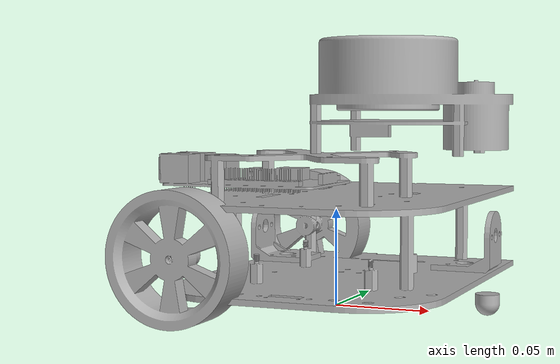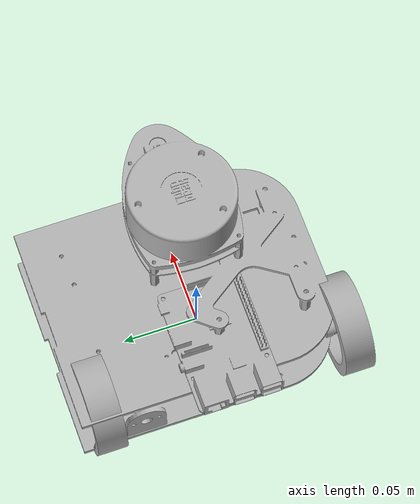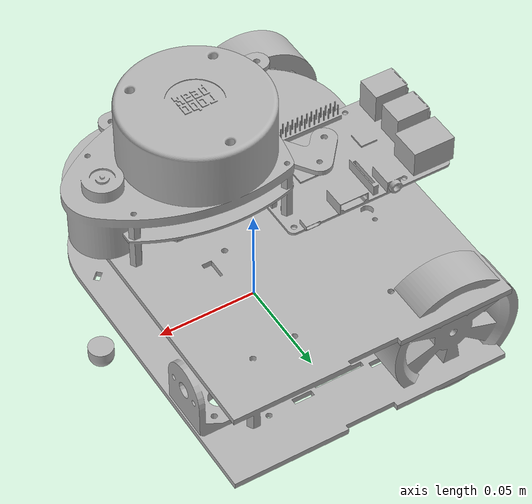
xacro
<?xml version="1.0" ?>
<robot name="robot" xmlns:xacro="http://www.ros.org/wiki/xacro">

<xacro:include filename="$(find robot_description)/urdf/materials.xacro" />
<xacro:include filename="$(find robot_description)/urdf/robot.trans" />

<xacro:include filename="$(find robot_description)/urdf/robot_materials.gazebo" />
<xacro:include filename="$(find robot_description)/urdf/robot_physics.gazebo" />
<xacro:include filename="$(find robot_description)/urdf/robot_plugins.gazebo" />

<link name="base_link">
  <inertial>
    <origin xyz="-0.006884713768929933 9.213905722342818e-06 0.034703030496186026" rpy="0 0 0"/>
    <mass value="0.23515369434832864"/>
    <inertia ixx="0.000507" iyy="0.000662" izz="0.000961" ixy="0.0" iyz="-0.0" ixz="-2.5e-05"/>
  </inertial>
  <visual>
    <origin xyz="0 0 0" rpy="0 0 0"/>
    <geometry>
      <mesh filename="package://robot_description/meshes/base_link.dae" scale="0.001 0.001 0.001"/>
    </geometry>
    <material name="silver"/>
  </visual>
  <collision>
    <origin xyz="0 0 0" rpy="0 0 0"/>
    <geometry>
      <mesh filename="package://robot_description/meshes/base_link.dae" scale="0.001 0.001 0.001"/>
    </geometry>
  </collision>
</link>

<link name="left_wheel_1">
  <inertial>
    <origin xyz="-5.4817837841919514e-06 0.01327997987885901 1.2011591450644676e-08" rpy="0 0 0"/>
    <mass value="0.037788267086655676"/>
    <inertia ixx="1.4e-05" iyy="2.6e-05" izz="1.4e-05" ixy="-0.0" iyz="-0.0" ixz="0.0"/>
  </inertial>
  <visual>
    <origin xyz="0.0475 -0.07049 -0.0325" rpy="0 0 0"/>
    <geometry>
      <mesh filename="package://robot_description/meshes/left_wheel.dae" scale="0.001 0.001 0.001"/>
    </geometry>
    <material name="silver"/>
  </visual>
  <collision>
    <origin xyz="0.0475 -0.07049 -0.0325" rpy="0 0 0"/>
    <geometry>
      <mesh filename="package://robot_description/meshes/left_wheel.dae" scale="0.001 0.001 0.001"/>
    </geometry>
  </collision>
</link>

<link name="right_wheel_1">
  <inertial>
    <origin xyz="4.842721226090696e-06 -0.013279403971838535 1.2011589355098717e-08" rpy="0 0 0"/>
    <mass value="0.03778826708665569"/>
    <inertia ixx="1.4e-05" iyy="2.6e-05" izz="1.4e-05" ixy="-0.0" iyz="0.0" ixz="-0.0"/>
  </inertial>
  <visual>
    <origin xyz="0.0475 0.07051 -0.0325" rpy="0 0 0"/>
    <geometry>
      <mesh filename="package://robot_description/meshes/right_wheel.dae" scale="0.001 0.001 0.001"/>
    </geometry>
    <material name="silver"/>
  </visual>
  <collision>
    <origin xyz="0.0475 0.07051 -0.0325" rpy="0 0 0"/>
    <geometry>
      <mesh filename="package://robot_description/meshes/right_wheel.dae" scale="0.001 0.001 0.001"/>
    </geometry>
  </collision>
</link>

<link name="rplidar_1">
  <inertial>
    <origin xyz="-0.028 0.0 -0.12294" rpy="0 0 0"/>
    <mass value="1.3392997077576585"/>
    <inertia ixx="0.000619" iyy="0.000967" izz="0.001105" ixy="-1e-06" iyz="-3e-06" ixz="0.000159"/>
  </inertial>
  <visual>
    <origin xyz="-0.028 0.0 -0.12294" rpy="0 0 0"/>
    <geometry>
      <mesh filename="package://robot_description/meshes/rplidar.dae" scale="0.001 0.001 0.001"/>
    </geometry>
    <material name="silver"/>
  </visual>
  <collision>
    <origin xyz="-0.028 0.0 -0.12294" rpy="0 0 0"/>
    <geometry>
      <mesh filename="package://robot_description/meshes/rplidar.dae" scale="0.001 0.001 0.001"/>
    </geometry>
  </collision>
</link>

<link name="raspi_1">
  <inertial>
    <origin xyz="0.004979207948719151 -0.012134700006918754 0.010477784260327846" rpy="0 0 0"/>
    <mass value="0.13472167579144484"/>
    <inertia ixx="4.1e-05" iyy="8.3e-05" izz="0.000118" ixy="-0.0" iyz="-0.0" ixz="9e-06"/>
  </inertial>
  <visual>
    <origin xyz="0.064945 -0.013379 -0.056161" rpy="0 0 0"/>
    <geometry>
      <mesh filename="package://robot_description/meshes/raspi.dae" scale="0.001 0.001 0.001"/>
    </geometry>
    <material name="silver"/>
  </visual>
  <collision>
    <origin xyz="0.064945 -0.013379 -0.056161" rpy="0 0 0"/>
    <geometry>
      <mesh filename="package://robot_description/meshes/raspi.dae" scale="0.001 0.001 0.001"/>
    </geometry>
  </collision>
</link>

<link name="caster_wheel_1">
  <inertial>
    <origin xyz="0.0037446804684521523 0.011111287953510513 -0.0039003321348734087" rpy="0 0 0"/>
    <mass value="0.0010489777870336325"/>
    <inertia ixx="0.0" iyy="0.0" izz="0.0" ixy="0.0" iyz="-0.0" ixz="-0.0"/>
  </inertial>
  <visual>
    <origin xyz="-0.076325 0.011121 -0.010161" rpy="0 0 0"/>
    <geometry>
      <mesh filename="package://robot_description/meshes/caster_wheel.dae" scale="0.001 0.001 0.001"/>
    </geometry>
    <material name="silver"/>
  </visual>
  <collision>
    <origin xyz="-0.076325 0.011121 -0.010161" rpy="0 0 0"/>
    <geometry>
      <mesh filename="package://robot_description/meshes/caster_wheel.dae" scale="0.001 0.001 0.001"/>
    </geometry>
  </collision>
</link>

<!-- Make IMU link and joint -->
<link name="imu"/>
<joint name="base_link2imu" type="fixed">
  <origin xyz="0.06 0.02 0" rpy="0 0 0"/>
  <parent link="base_link"/>
  <child link="imu"/>
</joint>

<joint name="Rigid37" type="fixed">
  <origin xyz="0.076325 -0.011121 0.010161" rpy="0 0 0"/>
  <parent link="base_link"/>
  <child link="caster_wheel_1"/>
</joint>

<joint name="Rev38" type="fixed">
  <origin xyz="-0.0475 0.07049 0.0325" rpy="0 0 0"/>
  <parent link="base_link"/>
  <child link="left_wheel_1"/>
</joint>

<joint name="Rev39" type="fixed">
  <origin xyz="-0.0475 -0.07051 0.0325" rpy="0 0 0"/>
  <parent link="base_link"/>
  <child link="right_wheel_1"/>
</joint>

<joint name="Rigid40" type="fixed">
  <origin xyz="0.028 0.0 0.12294" rpy="0 0 0"/>
  <parent link="base_link"/>
  <child link="rplidar_1"/>
</joint>

<joint name="Rigid41" type="fixed">
  <origin xyz="-0.064945 0.013379 0.056161" rpy="0 0 0"/>
  <parent link="base_link"/>
  <child link="raspi_1"/>
</joint>

</robot>

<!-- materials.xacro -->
<robot name="ROS" xmlns:xacro="http://www.ros.org/wiki/xacro" >

<material name="silver">
  <color rgba="0.700 0.700 0.700 1.000"/>
</material>

</robot>

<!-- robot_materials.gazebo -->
<robot name="robot" xmlns:xacro="http://www.ros.org/wiki/xacro" >

<xacro:property name="body_color" value="Gazebo/Black" />
<xacro:property name="wheel_color" value="Gazebo/FlatBlack" />
<xacro:property name="pcb_color" value="Gazebo/ZincYellow" />
<xacro:property name="white_color" value="Gazebo/White" />
<xacro:property name="gold_color" value="Gazebo/Gold"/>
<xacro:property name="darkGrey_color" value="Gazebo/DarkGrey"/>

<gazebo reference="rplidar_1">
  <material>${darkGrey_color}</material>
</gazebo>

<gazebo reference="caster_wheel_1">
  <material>${white_color}</material>
</gazebo>

</robot>
